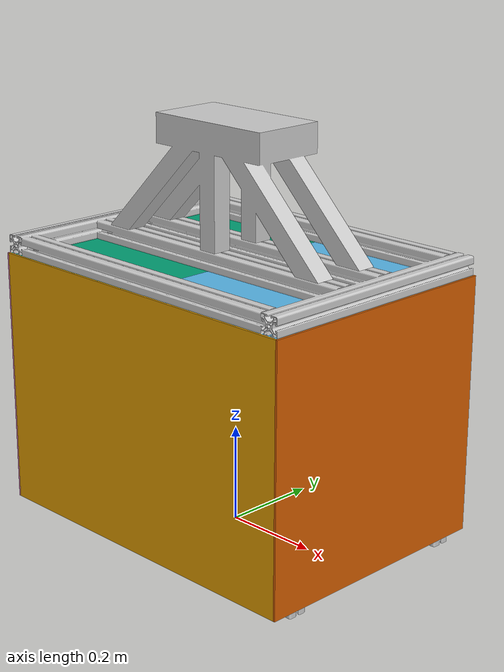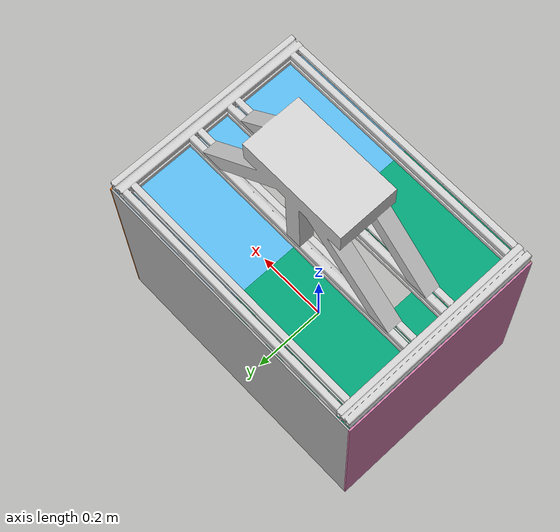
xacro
<?xml version="1.0"?>
<robot xmlns:xacro="http://ros.org/wiki/xacro"
       name="mobipick_structure" >

  <!-- structure -->
  <xacro:include filename="$(find mobipick_description)/urdf/structure/mobipick_structure.urdf.xacro" />

  <link name="world" />

  <xacro:structure prefix="" height="0.1" />

  <joint name="world_joint" type="fixed">
    <parent link="world" />
    <child link="part_down" />
    <origin xyz="0.0 0.0 0.0" rpy="0.0 0.0 0.0" />
  </joint>

</robot>

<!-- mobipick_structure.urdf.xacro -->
<robot xmlns:xacro="http://ros.org/wiki/xacro">
  <xacro:include filename="$(find mobipick_description)/urdf/common_properties.urdf.xacro" />

  <xacro:property name="structure_length" value="0.740" />
  <xacro:property name="structure_width"  value="0.530" />
  <xacro:property name="structure_height" value="0.538" />
  <xacro:property name="cover_thickness"  value="0.004" />
  <xacro:property name="cover_height"     value="0.528" />

  <!-- variant can be one of:
       - v1: The original Mobipick in Bremen, built for the Hybr-iT project
       - v2: The newer Mobipicks: one in Osnabrueck, two in Bremen for the UPLINX project
  -->
  <xacro:macro name="structure" params="prefix height variant='v1'">
    <link name="${prefix}part_down">
      <inertial>
        <origin xyz="0 0 0.3278534031" rpy="${1.5 * pi} ${0.5 * pi} ${0.5 * pi}" />
        <mass value="3.349376" />
        <inertia
          ixx="0.432077541"
          ixy="0"
          ixz="0"
          iyy="0.369249471"
          iyz="0"
          izz="0.179676981" />
      </inertial>
      <visual>
        <origin xyz="0 0 0" rpy="0 0 0" />
        <geometry>
          <mesh filename="package://mobipick_description/meshes/structure/visual/${variant}/part_down.stl" />
        </geometry>
        <xacro:insert_block name="material_aluminum" />
      </visual>
      <collision>
        <origin xyz="0 0 0" rpy="0 0 0" />
        <geometry>
          <mesh filename="package://mobipick_description/meshes/structure/collision/${variant}/part_down.stl" />
        </geometry>
      </collision>
    </link>
    <gazebo reference="${prefix}part_down">
      <material>Gazebo/Grey</material>
    </gazebo>

    <link name="${prefix}part_up">
      <inertial>
        <origin xyz="0 0 0.3535849057" rpy="${1.5 * pi} ${0.5 * pi} ${0.5 * pi}" />
        <mass value="4.64704" />
        <inertia
          ixx="0.549473755"
          ixy="0"
          ixz="0"
          iyy="0.436580833"
          iyz="0"
          izz="0.245971089" />
      </inertial>
      <visual>
        <origin xyz="0 0 0" rpy="0 0 0" />
        <geometry>
          <mesh filename="package://mobipick_description/meshes/structure/visual/${variant}/part_up.stl" />
        </geometry>
        <xacro:insert_block name="material_aluminum" />
      </visual>
      <collision>
        <origin xyz="0 0 0" rpy="0 0 0" />
        <geometry>
          <mesh filename="package://mobipick_description/meshes/structure/collision/${variant}/part_up.stl" />
        </geometry>
      </collision>
    </link>
    <gazebo reference="${prefix}part_up">
      <material>Gazebo/Grey</material>
    </gazebo>

    <link name="${prefix}pedestal">
      <inertial>
        <origin xyz="0 0 0.1532210441" rpy="${0.5 * pi} ${0.5 * pi} 0" />
        <mass value="2.354023413" />
        <inertia
          ixx="0.049542988"
          ixy="0"
          ixz="0"
          iyy="0.042530187"
          iyz="0"
          izz="0.020198776" />
      </inertial>
      <visual>
        <origin xyz="0 0 0" rpy="0 0 0" />
        <geometry>
          <mesh filename="package://mobipick_description/meshes/structure/visual/${variant}/pedestal.stl" />
        </geometry>
        <xacro:insert_block name="material_aluminum" />
      </visual>
      <collision>
        <origin xyz="0 0 0" rpy="0 0 0" />
        <geometry>
          <mesh filename="package://mobipick_description/meshes/structure/collision/${variant}/pedestal.stl" />
        </geometry>
      </collision>
    </link>
    <gazebo reference="${prefix}pedestal">
      <material>Gazebo/Grey</material>
    </gazebo>

    <link name="${prefix}pedestal_surface"/>

    <joint name="${prefix}structure_vertical_joint" type="fixed">
      <origin xyz="0 0 ${0.04 + height}" rpy="0 0 0" />
      <parent link="${prefix}part_down" />
      <child link="${prefix}part_up" />
    </joint>

    <joint name="${prefix}Tischaufbau_joint" type="fixed">
      <origin xyz="0 0 0.44" rpy="0 0 0" />
      <parent link="${prefix}part_up" />
      <child link="${prefix}pedestal" />
    </joint>

    <xacro:if value="${variant == 'v1'}">
      <xacro:property name="pedestal_height" value="0.2492" />
    </xacro:if>
    <xacro:if value="${variant == 'v2'}">
      <xacro:property name="pedestal_height" value="0.2291" />
    </xacro:if>

    <joint name="${prefix}Tischaufbau_base_joint" type="fixed">
      <origin xyz="0 0 ${pedestal_height}" rpy="0 0 0" />
      <parent link="${prefix}pedestal" />
      <child link="${prefix}pedestal_surface" />
    </joint>

    <!-- cover_front -->
    <joint name="${prefix}cover_front_joint" type="fixed">
      <origin xyz="${structure_length / 2 + cover_thickness / 2} 0 ${structure_height - cover_height / 2 + cover_thickness}" rpy="0 0 0" />
      <parent link="${prefix}part_down" />
      <child link="${prefix}cover_front_link" />
    </joint>
    <link name="${prefix}cover_front_link">
      <xacro:box_inertial mass="1.648" x="${cover_thickness}" y="${structure_width + 2 * cover_thickness}" z="${cover_height}">
        <origin xyz="0 0 0" />
      </xacro:box_inertial>
      <visual>
        <origin xyz="0 0 0" rpy="0 0 0" />
        <geometry>
          <mesh filename="package://mobipick_description/meshes/structure/visual/v2/cover_short_side.dae" />
        </geometry>
      </visual>
      <collision>
        <origin xyz="0 0 0" rpy="0 0 0" />
        <geometry>
          <mesh filename="package://mobipick_description/meshes/structure/visual/v2/cover_short_side.dae" />
        </geometry>
      </collision>
    </link>

    <!-- cover_back -->
    <joint name="${prefix}cover_back_joint" type="fixed">
      <origin xyz="${-(structure_length / 2 + cover_thickness / 2)} 0 ${structure_height - cover_height / 2 + cover_thickness}" rpy="0 0 ${pi}" />
      <parent link="${prefix}part_down" />
      <child link="${prefix}cover_back_link" />
    </joint>
    <link name="${prefix}cover_back_link">
      <xacro:box_inertial mass="1.648" x="${cover_thickness}" y="${structure_width + 2 * cover_thickness}" z="${cover_height}">
        <origin xyz="0 0 0" />
      </xacro:box_inertial>
      <visual>
        <origin xyz="0 0 0" rpy="0 0 0" />
        <geometry>
          <mesh filename="package://mobipick_description/meshes/structure/visual/v2/cover_short_side.dae" />
        </geometry>
      </visual>
      <collision>
        <origin xyz="0 0 0" rpy="0 0 0" />
        <geometry>
          <mesh filename="package://mobipick_description/meshes/structure/visual/v2/cover_short_side.dae" />
        </geometry>
      </collision>
    </link>

    <!-- cover_left -->
    <joint name="${prefix}cover_left_joint" type="fixed">
      <origin xyz="0 ${structure_width / 2 + cover_thickness / 2} ${structure_height - cover_height / 2 + cover_thickness}" rpy="0 0 ${pi / 2}" />
      <parent link="${prefix}part_down" />
      <child link="${prefix}cover_left_link" />
    </joint>
    <link name="${prefix}cover_left_link">
      <xacro:box_inertial mass="2.266" x="${cover_thickness}" y="${structure_length}" z="${cover_height}">
        <origin xyz="0 0 0" />
      </xacro:box_inertial>
      <visual>
        <origin xyz="0 0 0" rpy="0 0 0" />
        <geometry>
          <mesh filename="package://mobipick_description/meshes/structure/visual/v2/cover_long_side.dae" />
        </geometry>
      </visual>
      <collision>
        <origin xyz="0 0 0" rpy="0 0 0" />
        <geometry>
          <mesh filename="package://mobipick_description/meshes/structure/visual/v2/cover_long_side.dae" />
        </geometry>
      </collision>
    </link>

    <!-- cover_right -->
    <joint name="${prefix}cover_right_joint" type="fixed">
      <origin xyz="0 ${-(structure_width / 2 + cover_thickness / 2)} ${structure_height - cover_height / 2 + cover_thickness}" rpy="0 0 ${-pi / 2}" />
      <parent link="${prefix}part_down" />
      <child link="${prefix}cover_right_link" />
    </joint>
    <link name="${prefix}cover_right_link">
      <xacro:box_inertial mass="2.266" x="${cover_thickness}" y="${structure_length}" z="${cover_height}">
        <origin xyz="0 0 0" />
      </xacro:box_inertial>
      <visual>
        <origin xyz="0 0 0" rpy="0 0 0" />
        <geometry>
          <mesh filename="package://mobipick_description/meshes/structure/visual/v2/cover_long_side.dae" />
        </geometry>
      </visual>
      <collision>
        <origin xyz="0 0 0" rpy="0 0 0" />
        <geometry>
          <mesh filename="package://mobipick_description/meshes/structure/visual/v2/cover_long_side.dae" />
        </geometry>
      </collision>
    </link>

    <!-- cover_top_front -->
    <joint name="${prefix}cover_top_front_joint" type="fixed">
      <origin xyz="${structure_length / 4} 0 ${structure_height + cover_thickness / 2}" rpy="0 0 ${pi}" />
      <parent link="${prefix}part_down" />
      <child link="${prefix}cover_top_front_link" />
    </joint>
    <link name="${prefix}cover_top_front_link">
      <xacro:box_inertial mass="0.946" x="${cover_thickness}" y="${structure_length}" z="${cover_height}">
        <origin xyz="0 0 0" />
      </xacro:box_inertial>
      <visual>
        <origin xyz="0 0 0" rpy="0 0 0" />
        <geometry>
          <mesh filename="package://mobipick_description/meshes/structure/visual/v2/cover_top.dae" />
        </geometry>
      </visual>
      <collision>
        <origin xyz="0 0 0" rpy="0 0 0" />
        <geometry>
          <mesh filename="package://mobipick_description/meshes/structure/visual/v2/cover_top.dae" />
        </geometry>
      </collision>
    </link>

    <!-- cover_top_back -->
    <joint name="${prefix}cover_top_back_joint" type="fixed">
      <origin xyz="${-structure_length / 4} 0 ${structure_height + cover_thickness / 2}" rpy="0 0 0" />
      <parent link="${prefix}part_down" />
      <child link="${prefix}cover_top_back_link" />
    </joint>
    <link name="${prefix}cover_top_back_link">
      <xacro:box_inertial mass="0.946" x="${cover_thickness}" y="${structure_length}" z="${cover_height}">
        <origin xyz="0 0 0" />
      </xacro:box_inertial>
      <visual>
        <origin xyz="0 0 0" rpy="0 0 0" />
        <geometry>
          <mesh filename="package://mobipick_description/meshes/structure/visual/v2/cover_top.dae" />
        </geometry>
      </visual>
      <collision>
        <origin xyz="0 0 0" rpy="0 0 0" />
        <geometry>
          <mesh filename="package://mobipick_description/meshes/structure/visual/v2/cover_top.dae" />
        </geometry>
      </collision>
    </link>
  </xacro:macro>
</robot>

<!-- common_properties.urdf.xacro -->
<!--
  Various useful properties such as constants and materials
 -->
<robot name="xacro_properties" xmlns:xacro="http://ros.org/wiki/xacro">
  <!-- #################### RViz materials #################### -->
  <xacro:property name="material_white">
    <material name="white">
      <color rgba="1 1 1 1"/>
    </material>
  </xacro:property>
  <xacro:property name="material_almost_white">
    <material name="almost_white">
      <color rgba="0.9 0.9 0.9 1" />
    </material>
  </xacro:property>
  <xacro:property name="material_grey">
    <material name="grey">
      <color rgba="0.5 0.5 0.5 1"/>
    </material>
  </xacro:property>
  <xacro:property name="material_light_grey">
    <material name="light_grey">
      <color rgba="0.6 0.6 0.6 1"/>
    </material>
  </xacro:property>
  <xacro:property name="material_dark_grey">
    <material name="dark_grey">
      <color rgba="0.3 0.3 0.3 1"/>
    </material>
  </xacro:property>
  <xacro:property name="material_black">
    <material name="black">
      <color rgba="0.1 0.1 0.1 1"/>
    </material>
  </xacro:property>
  <xacro:property name="material_aluminum">
    <material name="aluminum">
      <color rgba="0.8 0.8 0.8 1" />
    </material>
  </xacro:property>
  <xacro:property name="material_silver">
    <material name="silver">
      <color rgba="0.79 0.82 0.93 1" />
    </material>
  </xacro:property>

  <!-- #################### inertials with origin #################### -->
  <!-- see https://secure.wikimedia.org/wikipedia/en/wiki/List_of_moment_of_inertia_tensors -->
  <xacro:macro name="sphere_inertial" params="radius mass *origin">
    <inertial>
      <mass value="${mass}" />
      <xacro:insert_block name="origin" />
      <inertia ixx="${0.4 * mass * radius * radius}" ixy="0.0" ixz="0.0"
        iyy="${0.4 * mass * radius * radius}" iyz="0.0"
        izz="${0.4 * mass * radius * radius}" />
    </inertial>
  </xacro:macro>

  <xacro:macro name="cylinder_inertial" params="radius length mass *origin">
    <inertial>
      <mass value="${mass}" />
      <xacro:insert_block name="origin" />
      <inertia ixx="${0.0833333 * mass * (3 * radius * radius + length * length)}" ixy="0.0" ixz="0.0"
        iyy="${0.0833333 * mass * (3 * radius * radius + length * length)}" iyz="0.0"
        izz="${0.5 * mass * radius * radius}" />
    </inertial>
  </xacro:macro>

  <xacro:macro name="box_inertial" params="x y z mass *origin">
    <inertial>
      <mass value="${mass}" />
      <xacro:insert_block name="origin" />
      <inertia ixx="${0.0833333 * mass * (y*y + z*z)}" ixy="0.0" ixz="0.0"
        iyy="${0.0833333 * mass * (x*x + z*z)}" iyz="0.0"
        izz="${0.0833333 * mass * (x*x + y*y)}" />
    </inertial>
  </xacro:macro>
</robot>
